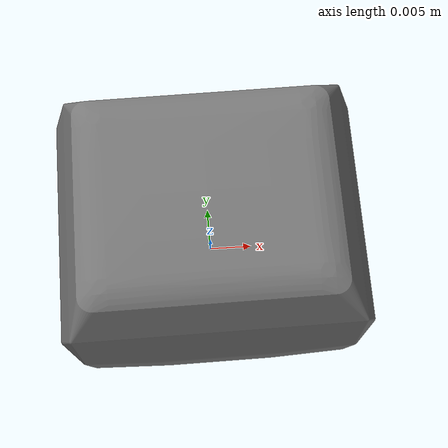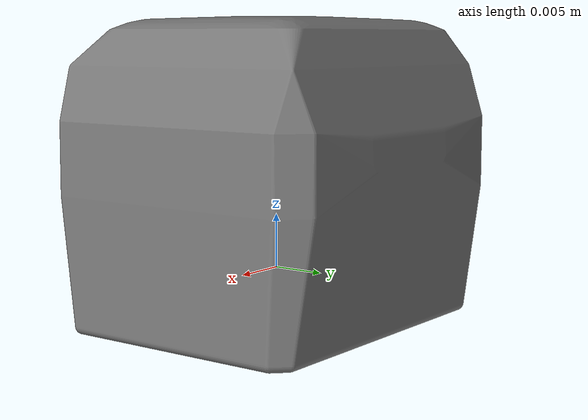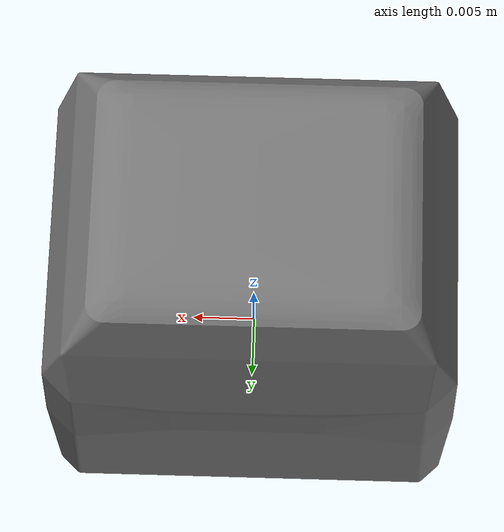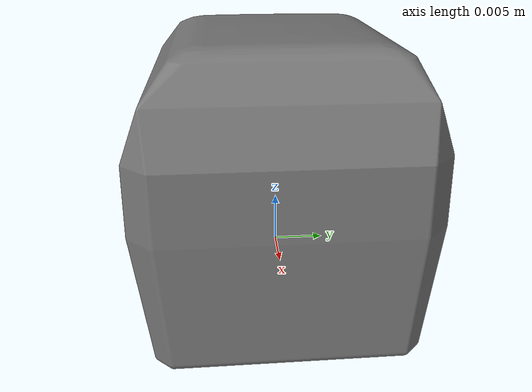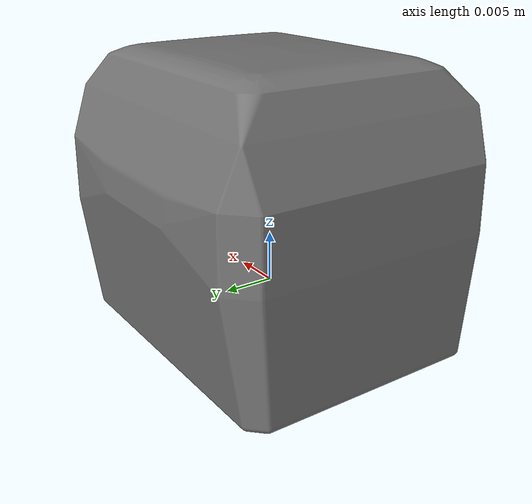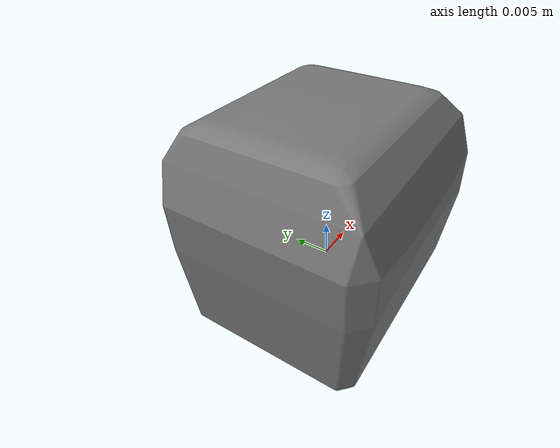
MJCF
<mujoco model="gelsight_mini">

	<compiler angle="radian" meshdir="assets" autolimits="true" />
	<option cone="elliptic" impratio="10" />

	<asset>
		<mesh name="gelsight_mini" file="gsmini_shell.stl" scale="0.001 0.001 0.001" />
		<mesh name="gelsight_mini_ch" file="gsmini_shell_ch.stl" scale="0.001 0.001 0.001" />
		<mesh name="untitled" file="untitled.stl" scale="0.001 0.001 0.001" />
		<mesh name="test" file="test.stl" scale="0.001 0.001 0.001" />
		<mesh name="test2" file="test2.stl" scale="0.001 0.001 0.001" />
		<material name="gray" rgba="0.4627 0.4627 0.4627 1"/>
	</asset>

	<worldbody>
		<body name="gelsight_mini" euler="1.57 0 0">
			<geom name="gelsight_mini" type="mesh" mesh="test2" condim="6" material="gray" solref="0.00001 1" />
			<camera name="gelsight_mini" mode="fixed" euler="1.57 0 0" pos="0 0.005 0" resolution="320 240" />
			 <site name="gelsight_mini_attachment_site"/>
		</body>
	</worldbody>
</mujoco>
